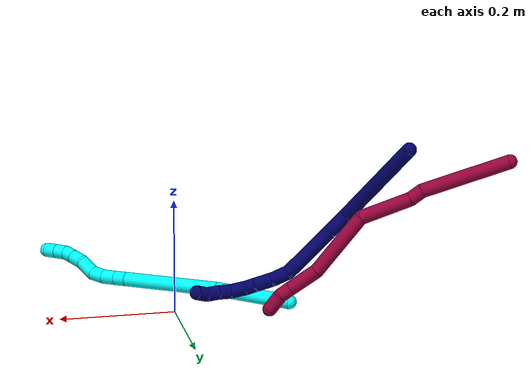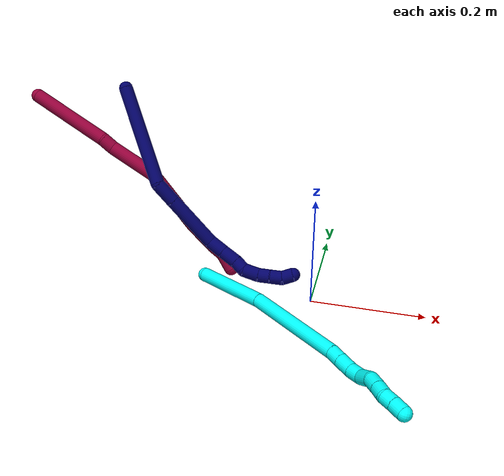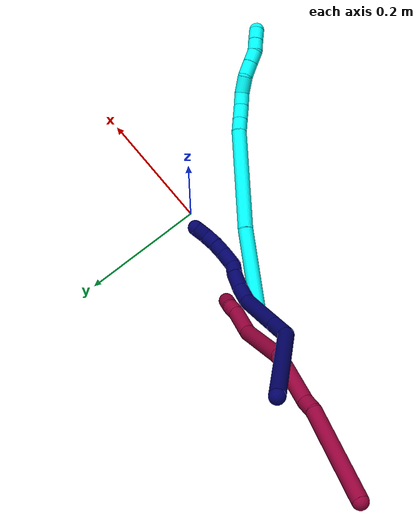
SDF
<sdf version="1.7">
 <world name="default">
  <model name="3">
   <static>0</static>
   <link name="3">
    <collision name="collision-cylinder-e_1_1_4">
     <pose>0.041399 -0.029282 0.043448 0.593027 0.668701 0.211479</pose>
     <geometry><cylinder><radius>0.0125</radius><length>0.133551</length></cylinder></geometry>
     <surface>
      <friction><ode><mu>1.16</mu><mu2>1.16</mu2><slip1>0</slip1><slip2>0</slip2></ode></friction>
      <contact><ode><kp>1e+06</kp><kd>1</kd><max_vel>0</max_vel><min_depth>0.001</min_depth></ode></contact>
     </surface>
    </collision>
    <visual name="visual-cylinder-e_1_1_4">
     <pose>0.041399 -0.029282 0.043448 0.593027 0.668701 0.211479</pose>
     <geometry><cylinder><radius>0.0125</radius><length>0.133551</length></cylinder></geometry>
     <material><ambient>0.003922 1 0.996078 1</ambient></material>
    </visual>
    <collision name="collision-cylinder-e_2_4_5">
     <pose>0.144942 -0.088887 0.141372 0.507932 0.783761 0.21372</pose>
     <geometry><cylinder><radius>0.0125</radius><length>0.176058</length></cylinder></geometry>
     <surface>
      <friction><ode><mu>1.16</mu><mu2>1.16</mu2><slip1>0</slip1><slip2>0</slip2></ode></friction>
      <contact><ode><kp>1e+06</kp><kd>1</kd><max_vel>0</max_vel><min_depth>0.001</min_depth></ode></contact>
     </surface>
    </collision>
    <visual name="visual-cylinder-e_2_4_5">
     <pose>0.144942 -0.088887 0.141372 0.507932 0.783761 0.21372</pose>
     <geometry><cylinder><radius>0.0125</radius><length>0.176058</length></cylinder></geometry>
     <material><ambient>0.003922 1 0.996078 1</ambient></material>
    </visual>
    <collision name="collision-cylinder-e_3_5_6">
     <pose>0.216009 -0.122437 0.20179 0.497442 0.922474 0.251123</pose>
     <geometry><cylinder><radius>0.0125</radius><length>0.022389</length></cylinder></geometry>
     <surface>
      <friction><ode><mu>1.16</mu><mu2>1.16</mu2><slip1>0</slip1><slip2>0</slip2></ode></friction>
      <contact><ode><kp>1e+06</kp><kd>1</kd><max_vel>0</max_vel><min_depth>0.001</min_depth></ode></contact>
     </surface>
    </collision>
    <visual name="visual-cylinder-e_3_5_6">
     <pose>0.216009 -0.122437 0.20179 0.497442 0.922474 0.251123</pose>
     <geometry><cylinder><radius>0.0125</radius><length>0.022389</length></cylinder></geometry>
     <material><ambient>0.003922 1 0.996078 1</ambient></material>
    </visual>
    <collision name="collision-cylinder-e_4_6_7">
     <pose>0.23556 -0.12954 0.21474 0.505208 0.924923 0.255946</pose>
     <geometry><cylinder><radius>0.0125</radius><length>0.026616</length></cylinder></geometry>
     <surface>
      <friction><ode><mu>1.16</mu><mu2>1.16</mu2><slip1>0</slip1><slip2>0</slip2></ode></friction>
      <contact><ode><kp>1e+06</kp><kd>1</kd><max_vel>0</max_vel><min_depth>0.001</min_depth></ode></contact>
     </surface>
    </collision>
    <visual name="visual-cylinder-e_4_6_7">
     <pose>0.23556 -0.12954 0.21474 0.505208 0.924923 0.255946</pose>
     <geometry><cylinder><radius>0.0125</radius><length>0.026616</length></cylinder></geometry>
     <material><ambient>0.003922 1 0.996078 1</ambient></material>
    </visual>
    <collision name="collision-cylinder-e_5_7_8">
     <pose>0.254836 -0.138997 0.227447 0.774963 0.825925 0.353897</pose>
     <geometry><cylinder><radius>0.0125</radius><length>0.02353</length></cylinder></geometry>
     <surface>
      <friction><ode><mu>1.16</mu><mu2>1.16</mu2><slip1>0</slip1><slip2>0</slip2></ode></friction>
      <contact><ode><kp>1e+06</kp><kd>1</kd><max_vel>0</max_vel><min_depth>0.001</min_depth></ode></contact>
     </surface>
    </collision>
    <visual name="visual-cylinder-e_5_7_8">
     <pose>0.254836 -0.138997 0.227447 0.774963 0.825925 0.353897</pose>
     <geometry><cylinder><radius>0.0125</radius><length>0.02353</length></cylinder></geometry>
     <material><ambient>0.003922 1 0.996078 1</ambient></material>
    </visual>
    <collision name="collision-cylinder-e_6_8_9">
     <pose>0.272626 -0.155858 0.235717 1.34657 0.668592 0.540519</pose>
     <geometry><cylinder><radius>0.0125</radius><length>0.029492</length></cylinder></geometry>
     <surface>
      <friction><ode><mu>1.16</mu><mu2>1.16</mu2><slip1>0</slip1><slip2>0</slip2></ode></friction>
      <contact><ode><kp>1e+06</kp><kd>1</kd><max_vel>0</max_vel><min_depth>0.001</min_depth></ode></contact>
     </surface>
    </collision>
    <visual name="visual-cylinder-e_6_8_9">
     <pose>0.272626 -0.155858 0.235717 1.34657 0.668592 0.540519</pose>
     <geometry><cylinder><radius>0.0125</radius><length>0.029492</length></cylinder></geometry>
     <material><ambient>0.003922 1 0.996078 1</ambient></material>
    </visual>
    <collision name="collision-cylinder-e_7_9_10">
     <pose>0.292516 -0.172763 0.241053 1.11413 1.04308 0.687399</pose>
     <geometry><cylinder><radius>0.0125</radius><length>0.024883</length></cylinder></geometry>
     <surface>
      <friction><ode><mu>1.16</mu><mu2>1.16</mu2><slip1>0</slip1><slip2>0</slip2></ode></friction>
      <contact><ode><kp>1e+06</kp><kd>1</kd><max_vel>0</max_vel><min_depth>0.001</min_depth></ode></contact>
     </surface>
    </collision>
    <visual name="visual-cylinder-e_7_9_10">
     <pose>0.292516 -0.172763 0.241053 1.11413 1.04308 0.687399</pose>
     <geometry><cylinder><radius>0.0125</radius><length>0.024883</length></cylinder></geometry>
     <material><ambient>0.003922 1 0.996078 1</ambient></material>
    </visual>
    <collision name="collision-cylinder-e_8_10_11">
     <pose>0.312894 -0.182943 0.246119 1.10288 1.08322 0.708844</pose>
     <geometry><cylinder><radius>0.0125</radius><length>0.021799</length></cylinder></geometry>
     <surface>
      <friction><ode><mu>1.16</mu><mu2>1.16</mu2><slip1>0</slip1><slip2>0</slip2></ode></friction>
      <contact><ode><kp>1e+06</kp><kd>1</kd><max_vel>0</max_vel><min_depth>0.001</min_depth></ode></contact>
     </surface>
    </collision>
    <visual name="visual-cylinder-e_8_10_11">
     <pose>0.312894 -0.182943 0.246119 1.10288 1.08322 0.708844</pose>
     <geometry><cylinder><radius>0.0125</radius><length>0.021799</length></cylinder></geometry>
     <material><ambient>0.003922 1 0.996078 1</ambient></material>
    </visual>
    <collision name="collision-cylinder-e_9_11_12">
     <pose>0.330412 -0.191022 0.253747 0.584268 0.890402 0.285048</pose>
     <geometry><cylinder><radius>0.0125</radius><length>0.020296</length></cylinder></geometry>
     <surface>
      <friction><ode><mu>1.16</mu><mu2>1.16</mu2><slip1>0</slip1><slip2>0</slip2></ode></friction>
      <contact><ode><kp>1e+06</kp><kd>1</kd><max_vel>0</max_vel><min_depth>0.001</min_depth></ode></contact>
     </surface>
    </collision>
    <visual name="visual-cylinder-e_9_11_12">
     <pose>0.330412 -0.191022 0.253747 0.584268 0.890402 0.285048</pose>
     <geometry><cylinder><radius>0.0125</radius><length>0.020296</length></cylinder></geometry>
     <material><ambient>0.003922 1 0.996078 1</ambient></material>
    </visual>
    <collision name="collision-cylinder-e_10_12_2">
     <pose>0.346869 -0.197824 0.264563 0.538568 0.929516 0.275008</pose>
     <geometry><cylinder><radius>0.0125</radius><length>0.021385</length></cylinder></geometry>
     <surface>
      <friction><ode><mu>1.16</mu><mu2>1.16</mu2><slip1>0</slip1><slip2>0</slip2></ode></friction>
      <contact><ode><kp>1e+06</kp><kd>1</kd><max_vel>0</max_vel><min_depth>0.001</min_depth></ode></contact>
     </surface>
    </collision>
    <visual name="visual-cylinder-e_10_12_2">
     <pose>0.346869 -0.197824 0.264563 0.538568 0.929516 0.275008</pose>
     <geometry><cylinder><radius>0.0125</radius><length>0.021385</length></cylinder></geometry>
     <material><ambient>0.003922 1 0.996078 1</ambient></material>
    </visual>
    <collision name="collision-sphere-2">
     <pose>0.355437 -0.201105 0.270054 0 -0 0</pose>
     <geometry><sphere><radius>0.0125</radius></sphere></geometry>
     <surface>
      <friction><ode><mu>1.16</mu><mu2>1.16</mu2><slip1>0</slip1><slip2>0</slip2></ode></friction>
      <contact><ode><kp>1e+06</kp><kd>1</kd><max_vel>0</max_vel><min_depth>0.001</min_depth></ode></contact>
     </surface>
    </collision>
    <visual name="visual-sphere-2">
     <pose>0.355437 -0.201105 0.270054 0 -0 0</pose>
     <geometry><sphere><radius>0.0125</radius></sphere></geometry>
     <material><ambient>0.003922 1 0.996078 1</ambient></material>
    </visual>
    <collision name="collision-sphere-12">
     <pose>0.3383 -0.194543 0.259072 0 -0 0</pose>
     <geometry><sphere><radius>0.0125</radius></sphere></geometry>
     <surface>
      <friction><ode><mu>1.16</mu><mu2>1.16</mu2><slip1>0</slip1><slip2>0</slip2></ode></friction>
      <contact><ode><kp>1e+06</kp><kd>1</kd><max_vel>0</max_vel><min_depth>0.001</min_depth></ode></contact>
     </surface>
    </collision>
    <visual name="visual-sphere-12">
     <pose>0.3383 -0.194543 0.259072 0 -0 0</pose>
     <geometry><sphere><radius>0.0125</radius></sphere></geometry>
     <material><ambient>0.003922 1 0.996078 1</ambient></material>
    </visual>
    <collision name="collision-sphere-11">
     <pose>0.322523 -0.187501 0.248422 0 -0 0</pose>
     <geometry><sphere><radius>0.0125</radius></sphere></geometry>
     <surface>
      <friction><ode><mu>1.16</mu><mu2>1.16</mu2><slip1>0</slip1><slip2>0</slip2></ode></friction>
      <contact><ode><kp>1e+06</kp><kd>1</kd><max_vel>0</max_vel><min_depth>0.001</min_depth></ode></contact>
     </surface>
    </collision>
    <visual name="visual-sphere-11">
     <pose>0.322523 -0.187501 0.248422 0 -0 0</pose>
     <geometry><sphere><radius>0.0125</radius></sphere></geometry>
     <material><ambient>0.003922 1 0.996078 1</ambient></material>
    </visual>
    <collision name="collision-sphere-10">
     <pose>0.303265 -0.178386 0.243816 0 -0 0</pose>
     <geometry><sphere><radius>0.0125</radius></sphere></geometry>
     <surface>
      <friction><ode><mu>1.16</mu><mu2>1.16</mu2><slip1>0</slip1><slip2>0</slip2></ode></friction>
      <contact><ode><kp>1e+06</kp><kd>1</kd><max_vel>0</max_vel><min_depth>0.001</min_depth></ode></contact>
     </surface>
    </collision>
    <visual name="visual-sphere-10">
     <pose>0.303265 -0.178386 0.243816 0 -0 0</pose>
     <geometry><sphere><radius>0.0125</radius></sphere></geometry>
     <material><ambient>0.003922 1 0.996078 1</ambient></material>
    </visual>
    <collision name="collision-sphere-9">
     <pose>0.281767 -0.16714 0.23829 0 -0 0</pose>
     <geometry><sphere><radius>0.0125</radius></sphere></geometry>
     <surface>
      <friction><ode><mu>1.16</mu><mu2>1.16</mu2><slip1>0</slip1><slip2>0</slip2></ode></friction>
      <contact><ode><kp>1e+06</kp><kd>1</kd><max_vel>0</max_vel><min_depth>0.001</min_depth></ode></contact>
     </surface>
    </collision>
    <visual name="visual-sphere-9">
     <pose>0.281767 -0.16714 0.23829 0 -0 0</pose>
     <geometry><sphere><radius>0.0125</radius></sphere></geometry>
     <material><ambient>0.003922 1 0.996078 1</ambient></material>
    </visual>
    <collision name="collision-sphere-4">
     <pose>0.082798 -0.058563 0.086896 0 -0 0</pose>
     <geometry><sphere><radius>0.0125</radius></sphere></geometry>
     <surface>
      <friction><ode><mu>1.16</mu><mu2>1.16</mu2><slip1>0</slip1><slip2>0</slip2></ode></friction>
      <contact><ode><kp>1e+06</kp><kd>1</kd><max_vel>0</max_vel><min_depth>0.001</min_depth></ode></contact>
     </surface>
    </collision>
    <visual name="visual-sphere-4">
     <pose>0.082798 -0.058563 0.086896 0 -0 0</pose>
     <geometry><sphere><radius>0.0125</radius></sphere></geometry>
     <material><ambient>0.003922 1 0.996078 1</ambient></material>
    </visual>
    <collision name="collision-sphere-1">
     <geometry><sphere><radius>0.0125</radius></sphere></geometry>
     <surface>
      <friction><ode><mu>1.16</mu><mu2>1.16</mu2><slip1>0</slip1><slip2>0</slip2></ode></friction>
      <contact><ode><kp>1e+06</kp><kd>1</kd><max_vel>0</max_vel><min_depth>0.001</min_depth></ode></contact>
     </surface>
    </collision>
    <visual name="visual-sphere-1">
     <geometry><sphere><radius>0.0125</radius></sphere></geometry>
     <material><ambient>0.003922 1 0.996078 1</ambient></material>
    </visual>
    <collision name="collision-sphere-8">
     <pose>0.263485 -0.144577 0.233145 0 -0 0</pose>
     <geometry><sphere><radius>0.0125</radius></sphere></geometry>
     <surface>
      <friction><ode><mu>1.16</mu><mu2>1.16</mu2><slip1>0</slip1><slip2>0</slip2></ode></friction>
      <contact><ode><kp>1e+06</kp><kd>1</kd><max_vel>0</max_vel><min_depth>0.001</min_depth></ode></contact>
     </surface>
    </collision>
    <visual name="visual-sphere-8">
     <pose>0.263485 -0.144577 0.233145 0 -0 0</pose>
     <geometry><sphere><radius>0.0125</radius></sphere></geometry>
     <material><ambient>0.003922 1 0.996078 1</ambient></material>
    </visual>
    <collision name="collision-sphere-5">
     <pose>0.207086 -0.119212 0.195849 0 -0 0</pose>
     <geometry><sphere><radius>0.0125</radius></sphere></geometry>
     <surface>
      <friction><ode><mu>1.16</mu><mu2>1.16</mu2><slip1>0</slip1><slip2>0</slip2></ode></friction>
      <contact><ode><kp>1e+06</kp><kd>1</kd><max_vel>0</max_vel><min_depth>0.001</min_depth></ode></contact>
     </surface>
    </collision>
    <visual name="visual-sphere-5">
     <pose>0.207086 -0.119212 0.195849 0 -0 0</pose>
     <geometry><sphere><radius>0.0125</radius></sphere></geometry>
     <material><ambient>0.003922 1 0.996078 1</ambient></material>
    </visual>
    <collision name="collision-sphere-6">
     <pose>0.224932 -0.125663 0.20773 0 -0 0</pose>
     <geometry><sphere><radius>0.0125</radius></sphere></geometry>
     <surface>
      <friction><ode><mu>1.16</mu><mu2>1.16</mu2><slip1>0</slip1><slip2>0</slip2></ode></friction>
      <contact><ode><kp>1e+06</kp><kd>1</kd><max_vel>0</max_vel><min_depth>0.001</min_depth></ode></contact>
     </surface>
    </collision>
    <visual name="visual-sphere-6">
     <pose>0.224932 -0.125663 0.20773 0 -0 0</pose>
     <geometry><sphere><radius>0.0125</radius></sphere></geometry>
     <material><ambient>0.003922 1 0.996078 1</ambient></material>
    </visual>
    <collision name="collision-sphere-7">
     <pose>0.246187 -0.133417 0.221749 0 -0 0</pose>
     <geometry><sphere><radius>0.0125</radius></sphere></geometry>
     <surface>
      <friction><ode><mu>1.16</mu><mu2>1.16</mu2><slip1>0</slip1><slip2>0</slip2></ode></friction>
      <contact><ode><kp>1e+06</kp><kd>1</kd><max_vel>0</max_vel><min_depth>0.001</min_depth></ode></contact>
     </surface>
    </collision>
    <visual name="visual-sphere-7">
     <pose>0.246187 -0.133417 0.221749 0 -0 0</pose>
     <geometry><sphere><radius>0.0125</radius></sphere></geometry>
     <material><ambient>0.003922 1 0.996078 1</ambient></material>
    </visual>
    <inertial>
     <pose>0.168826 -0.100021 0.150801 0 -0 0</pose>
     <mass>0.5</mass>
     <inertia>
      <ixx>0.00062</ixx>
      <ixy>0</ixy>
      <ixz>0</ixz>
      <iyy>0.000713</iyy>
      <iyz>0</iyz>
      <izz>-0.000188</izz>
     </inertia>
    </inertial>
   </link>
   <pose>-0.197695 0.020131 0.011497 -1.88433 0.2334 -1.39298</pose>
  </model>
  <model name="7">
   <static>0</static>
   <link name="7">
    <collision name="collision-cylinder-e_1_1_4">
     <pose>-0.038786 0.082893 -0.019375 -1.80041 -0.427521 0.534253</pose>
     <geometry><cylinder><radius>0.0125</radius><length>0.187093</length></cylinder></geometry>
     <surface>
      <friction><ode><mu>1.16</mu><mu2>1.16</mu2><slip1>0</slip1><slip2>0</slip2></ode></friction>
      <contact><ode><kp>1e+06</kp><kd>1</kd><max_vel>0</max_vel><min_depth>0.001</min_depth></ode></contact>
     </surface>
    </collision>
    <visual name="visual-cylinder-e_1_1_4">
     <pose>-0.038786 0.082893 -0.019375 -1.80041 -0.427521 0.534253</pose>
     <geometry><cylinder><radius>0.0125</radius><length>0.187093</length></cylinder></geometry>
     <material><ambient>0.003922 0 0.403922 1</ambient></material>
    </visual>
    <collision name="collision-cylinder-e_2_4_5">
     <pose>-0.078878 0.185894 -0.03596 -1.43289 -0.064263 0.055965</pose>
     <geometry><cylinder><radius>0.0125</radius><length>0.040686</length></cylinder></geometry>
     <surface>
      <friction><ode><mu>1.16</mu><mu2>1.16</mu2><slip1>0</slip1><slip2>0</slip2></ode></friction>
      <contact><ode><kp>1e+06</kp><kd>1</kd><max_vel>0</max_vel><min_depth>0.001</min_depth></ode></contact>
     </surface>
    </collision>
    <visual name="visual-cylinder-e_2_4_5">
     <pose>-0.078878 0.185894 -0.03596 -1.43289 -0.064263 0.055965</pose>
     <geometry><cylinder><radius>0.0125</radius><length>0.040686</length></cylinder></geometry>
     <material><ambient>0.003922 0 0.403922 1</ambient></material>
    </visual>
    <collision name="collision-cylinder-e_3_5_6">
     <pose>-0.083247 0.255363 -0.026394 -1.43439 -0.061377 0.053532</pose>
     <geometry><cylinder><radius>0.0125</radius><length>0.099834</length></cylinder></geometry>
     <surface>
      <friction><ode><mu>1.16</mu><mu2>1.16</mu2><slip1>0</slip1><slip2>0</slip2></ode></friction>
      <contact><ode><kp>1e+06</kp><kd>1</kd><max_vel>0</max_vel><min_depth>0.001</min_depth></ode></contact>
     </surface>
    </collision>
    <visual name="visual-cylinder-e_3_5_6">
     <pose>-0.083247 0.255363 -0.026394 -1.43439 -0.061377 0.053532</pose>
     <geometry><cylinder><radius>0.0125</radius><length>0.099834</length></cylinder></geometry>
     <material><ambient>0.003922 0 0.403922 1</ambient></material>
    </visual>
    <collision name="collision-cylinder-e_4_6_7">
     <pose>-0.084243 0.319681 -0.022007 -1.72917 0.135503 -0.15877</pose>
     <geometry><cylinder><radius>0.0125</radius><length>0.030575</length></cylinder></geometry>
     <surface>
      <friction><ode><mu>1.16</mu><mu2>1.16</mu2><slip1>0</slip1><slip2>0</slip2></ode></friction>
      <contact><ode><kp>1e+06</kp><kd>1</kd><max_vel>0</max_vel><min_depth>0.001</min_depth></ode></contact>
     </surface>
    </collision>
    <visual name="visual-cylinder-e_4_6_7">
     <pose>-0.084243 0.319681 -0.022007 -1.72917 0.135503 -0.15877</pose>
     <geometry><cylinder><radius>0.0125</radius><length>0.030575</length></cylinder></geometry>
     <material><ambient>0.003922 0 0.403922 1</ambient></material>
    </visual>
    <collision name="collision-cylinder-e_5_7_8">
     <pose>-0.079631 0.349173 -0.028716 -1.8597 0.166431 -0.222686</pose>
     <geometry><cylinder><radius>0.0125</radius><length>0.030752</length></cylinder></geometry>
     <surface>
      <friction><ode><mu>1.16</mu><mu2>1.16</mu2><slip1>0</slip1><slip2>0</slip2></ode></friction>
      <contact><ode><kp>1e+06</kp><kd>1</kd><max_vel>0</max_vel><min_depth>0.001</min_depth></ode></contact>
     </surface>
    </collision>
    <visual name="visual-cylinder-e_5_7_8">
     <pose>-0.079631 0.349173 -0.028716 -1.8597 0.166431 -0.222686</pose>
     <geometry><cylinder><radius>0.0125</radius><length>0.030752</length></cylinder></geometry>
     <material><ambient>0.003922 0 0.403922 1</ambient></material>
    </visual>
    <collision name="collision-cylinder-e_6_8_9">
     <pose>-0.077031 0.373055 -0.036867 -1.95972 0.005181 -0.007723</pose>
     <geometry><cylinder><radius>0.0125</radius><length>0.020203</length></cylinder></geometry>
     <surface>
      <friction><ode><mu>1.16</mu><mu2>1.16</mu2><slip1>0</slip1><slip2>0</slip2></ode></friction>
      <contact><ode><kp>1e+06</kp><kd>1</kd><max_vel>0</max_vel><min_depth>0.001</min_depth></ode></contact>
     </surface>
    </collision>
    <visual name="visual-cylinder-e_6_8_9">
     <pose>-0.077031 0.373055 -0.036867 -1.95972 0.005181 -0.007723</pose>
     <geometry><cylinder><radius>0.0125</radius><length>0.020203</length></cylinder></geometry>
     <material><ambient>0.003922 0 0.403922 1</ambient></material>
    </visual>
    <collision name="collision-cylinder-e_7_9_10">
     <pose>-0.07066 0.394849 -0.04254 -1.71779 0.465416 -0.536131</pose>
     <geometry><cylinder><radius>0.0125</radius><length>0.028161</length></cylinder></geometry>
     <surface>
      <friction><ode><mu>1.16</mu><mu2>1.16</mu2><slip1>0</slip1><slip2>0</slip2></ode></friction>
      <contact><ode><kp>1e+06</kp><kd>1</kd><max_vel>0</max_vel><min_depth>0.001</min_depth></ode></contact>
     </surface>
    </collision>
    <visual name="visual-cylinder-e_7_9_10">
     <pose>-0.07066 0.394849 -0.04254 -1.71779 0.465416 -0.536131</pose>
     <geometry><cylinder><radius>0.0125</radius><length>0.028161</length></cylinder></geometry>
     <material><ambient>0.003922 0 0.403922 1</ambient></material>
    </visual>
    <collision name="collision-cylinder-e_8_10_11">
     <pose>-0.058007 0.41505 -0.045664 -1.73457 0.678311 -0.788229</pose>
     <geometry><cylinder><radius>0.0125</radius><length>0.020186</length></cylinder></geometry>
     <surface>
      <friction><ode><mu>1.16</mu><mu2>1.16</mu2><slip1>0</slip1><slip2>0</slip2></ode></friction>
      <contact><ode><kp>1e+06</kp><kd>1</kd><max_vel>0</max_vel><min_depth>0.001</min_depth></ode></contact>
     </surface>
    </collision>
    <visual name="visual-cylinder-e_8_10_11">
     <pose>-0.058007 0.41505 -0.045664 -1.73457 0.678311 -0.788229</pose>
     <geometry><cylinder><radius>0.0125</radius><length>0.020186</length></cylinder></geometry>
     <material><ambient>0.003922 0 0.403922 1</ambient></material>
    </visual>
    <collision name="collision-cylinder-e_9_11_12">
     <pose>-0.044898 0.431405 -0.047123 -1.59143 0.667164 -0.680033</pose>
     <geometry><cylinder><radius>0.0125</radius><length>0.021901</length></cylinder></geometry>
     <surface>
      <friction><ode><mu>1.16</mu><mu2>1.16</mu2><slip1>0</slip1><slip2>0</slip2></ode></friction>
      <contact><ode><kp>1e+06</kp><kd>1</kd><max_vel>0</max_vel><min_depth>0.001</min_depth></ode></contact>
     </surface>
    </collision>
    <visual name="visual-cylinder-e_9_11_12">
     <pose>-0.044898 0.431405 -0.047123 -1.59143 0.667164 -0.680033</pose>
     <geometry><cylinder><radius>0.0125</radius><length>0.021901</length></cylinder></geometry>
     <material><ambient>0.003922 0 0.403922 1</ambient></material>
    </visual>
    <collision name="collision-cylinder-e_10_12_2">
     <pose>-0.029008 0.444808 -0.047496 -1.61147 1.08551 -1.12183</pose>
     <geometry><cylinder><radius>0.0125</radius><length>0.020608</length></cylinder></geometry>
     <surface>
      <friction><ode><mu>1.16</mu><mu2>1.16</mu2><slip1>0</slip1><slip2>0</slip2></ode></friction>
      <contact><ode><kp>1e+06</kp><kd>1</kd><max_vel>0</max_vel><min_depth>0.001</min_depth></ode></contact>
     </surface>
    </collision>
    <visual name="visual-cylinder-e_10_12_2">
     <pose>-0.029008 0.444808 -0.047496 -1.61147 1.08551 -1.12183</pose>
     <geometry><cylinder><radius>0.0125</radius><length>0.020608</length></cylinder></geometry>
     <material><ambient>0.003922 0 0.403922 1</ambient></material>
    </visual>
    <collision name="collision-sphere-2">
     <pose>-0.019894 0.449611 -0.047691 0 -0 0</pose>
     <geometry><sphere><radius>0.0125</radius></sphere></geometry>
     <surface>
      <friction><ode><mu>1.16</mu><mu2>1.16</mu2><slip1>0</slip1><slip2>0</slip2></ode></friction>
      <contact><ode><kp>1e+06</kp><kd>1</kd><max_vel>0</max_vel><min_depth>0.001</min_depth></ode></contact>
     </surface>
    </collision>
    <visual name="visual-sphere-2">
     <pose>-0.019894 0.449611 -0.047691 0 -0 0</pose>
     <geometry><sphere><radius>0.0125</radius></sphere></geometry>
     <material><ambient>0.003922 0 0.403922 1</ambient></material>
    </visual>
    <collision name="collision-sphere-12">
     <pose>-0.038122 0.440006 -0.0473 0 -0 0</pose>
     <geometry><sphere><radius>0.0125</radius></sphere></geometry>
     <surface>
      <friction><ode><mu>1.16</mu><mu2>1.16</mu2><slip1>0</slip1><slip2>0</slip2></ode></friction>
      <contact><ode><kp>1e+06</kp><kd>1</kd><max_vel>0</max_vel><min_depth>0.001</min_depth></ode></contact>
     </surface>
    </collision>
    <visual name="visual-sphere-12">
     <pose>-0.038122 0.440006 -0.0473 0 -0 0</pose>
     <geometry><sphere><radius>0.0125</radius></sphere></geometry>
     <material><ambient>0.003922 0 0.403922 1</ambient></material>
    </visual>
    <collision name="collision-sphere-11">
     <pose>-0.051674 0.422804 -0.046946 0 -0 0</pose>
     <geometry><sphere><radius>0.0125</radius></sphere></geometry>
     <surface>
      <friction><ode><mu>1.16</mu><mu2>1.16</mu2><slip1>0</slip1><slip2>0</slip2></ode></friction>
      <contact><ode><kp>1e+06</kp><kd>1</kd><max_vel>0</max_vel><min_depth>0.001</min_depth></ode></contact>
     </surface>
    </collision>
    <visual name="visual-sphere-11">
     <pose>-0.051674 0.422804 -0.046946 0 -0 0</pose>
     <geometry><sphere><radius>0.0125</radius></sphere></geometry>
     <material><ambient>0.003922 0 0.403922 1</ambient></material>
    </visual>
    <collision name="collision-sphere-10">
     <pose>-0.06434 0.407297 -0.044383 0 -0 0</pose>
     <geometry><sphere><radius>0.0125</radius></sphere></geometry>
     <surface>
      <friction><ode><mu>1.16</mu><mu2>1.16</mu2><slip1>0</slip1><slip2>0</slip2></ode></friction>
      <contact><ode><kp>1e+06</kp><kd>1</kd><max_vel>0</max_vel><min_depth>0.001</min_depth></ode></contact>
     </surface>
    </collision>
    <visual name="visual-sphere-10">
     <pose>-0.06434 0.407297 -0.044383 0 -0 0</pose>
     <geometry><sphere><radius>0.0125</radius></sphere></geometry>
     <material><ambient>0.003922 0 0.403922 1</ambient></material>
    </visual>
    <collision name="collision-sphere-9">
     <pose>-0.076979 0.382402 -0.040697 0 -0 0</pose>
     <geometry><sphere><radius>0.0125</radius></sphere></geometry>
     <surface>
      <friction><ode><mu>1.16</mu><mu2>1.16</mu2><slip1>0</slip1><slip2>0</slip2></ode></friction>
      <contact><ode><kp>1e+06</kp><kd>1</kd><max_vel>0</max_vel><min_depth>0.001</min_depth></ode></contact>
     </surface>
    </collision>
    <visual name="visual-sphere-9">
     <pose>-0.076979 0.382402 -0.040697 0 -0 0</pose>
     <geometry><sphere><radius>0.0125</radius></sphere></geometry>
     <material><ambient>0.003922 0 0.403922 1</ambient></material>
    </visual>
    <collision name="collision-sphere-4">
     <pose>-0.077572 0.165786 -0.03875 0 -0 0</pose>
     <geometry><sphere><radius>0.0125</radius></sphere></geometry>
     <surface>
      <friction><ode><mu>1.16</mu><mu2>1.16</mu2><slip1>0</slip1><slip2>0</slip2></ode></friction>
      <contact><ode><kp>1e+06</kp><kd>1</kd><max_vel>0</max_vel><min_depth>0.001</min_depth></ode></contact>
     </surface>
    </collision>
    <visual name="visual-sphere-4">
     <pose>-0.077572 0.165786 -0.03875 0 -0 0</pose>
     <geometry><sphere><radius>0.0125</radius></sphere></geometry>
     <material><ambient>0.003922 0 0.403922 1</ambient></material>
    </visual>
    <collision name="collision-sphere-1">
     <geometry><sphere><radius>0.0125</radius></sphere></geometry>
     <surface>
      <friction><ode><mu>1.16</mu><mu2>1.16</mu2><slip1>0</slip1><slip2>0</slip2></ode></friction>
      <contact><ode><kp>1e+06</kp><kd>1</kd><max_vel>0</max_vel><min_depth>0.001</min_depth></ode></contact>
     </surface>
    </collision>
    <visual name="visual-sphere-1">
     <geometry><sphere><radius>0.0125</radius></sphere></geometry>
     <material><ambient>0.003922 0 0.403922 1</ambient></material>
    </visual>
    <collision name="collision-sphere-8">
     <pose>-0.077084 0.363708 -0.033036 0 -0 0</pose>
     <geometry><sphere><radius>0.0125</radius></sphere></geometry>
     <surface>
      <friction><ode><mu>1.16</mu><mu2>1.16</mu2><slip1>0</slip1><slip2>0</slip2></ode></friction>
      <contact><ode><kp>1e+06</kp><kd>1</kd><max_vel>0</max_vel><min_depth>0.001</min_depth></ode></contact>
     </surface>
    </collision>
    <visual name="visual-sphere-8">
     <pose>-0.077084 0.363708 -0.033036 0 -0 0</pose>
     <geometry><sphere><radius>0.0125</radius></sphere></geometry>
     <material><ambient>0.003922 0 0.403922 1</ambient></material>
    </visual>
    <collision name="collision-sphere-5">
     <pose>-0.080185 0.206002 -0.033169 0 -0 0</pose>
     <geometry><sphere><radius>0.0125</radius></sphere></geometry>
     <surface>
      <friction><ode><mu>1.16</mu><mu2>1.16</mu2><slip1>0</slip1><slip2>0</slip2></ode></friction>
      <contact><ode><kp>1e+06</kp><kd>1</kd><max_vel>0</max_vel><min_depth>0.001</min_depth></ode></contact>
     </surface>
    </collision>
    <visual name="visual-sphere-5">
     <pose>-0.080185 0.206002 -0.033169 0 -0 0</pose>
     <geometry><sphere><radius>0.0125</radius></sphere></geometry>
     <material><ambient>0.003922 0 0.403922 1</ambient></material>
    </visual>
    <collision name="collision-sphere-6">
     <pose>-0.086308 0.304723 -0.019618 0 -0 0</pose>
     <geometry><sphere><radius>0.0125</radius></sphere></geometry>
     <surface>
      <friction><ode><mu>1.16</mu><mu2>1.16</mu2><slip1>0</slip1><slip2>0</slip2></ode></friction>
      <contact><ode><kp>1e+06</kp><kd>1</kd><max_vel>0</max_vel><min_depth>0.001</min_depth></ode></contact>
     </surface>
    </collision>
    <visual name="visual-sphere-6">
     <pose>-0.086308 0.304723 -0.019618 0 -0 0</pose>
     <geometry><sphere><radius>0.0125</radius></sphere></geometry>
     <material><ambient>0.003922 0 0.403922 1</ambient></material>
    </visual>
    <collision name="collision-sphere-7">
     <pose>-0.082178 0.334638 -0.024396 0 -0 0</pose>
     <geometry><sphere><radius>0.0125</radius></sphere></geometry>
     <surface>
      <friction><ode><mu>1.16</mu><mu2>1.16</mu2><slip1>0</slip1><slip2>0</slip2></ode></friction>
      <contact><ode><kp>1e+06</kp><kd>1</kd><max_vel>0</max_vel><min_depth>0.001</min_depth></ode></contact>
     </surface>
    </collision>
    <visual name="visual-sphere-7">
     <pose>-0.082178 0.334638 -0.024396 0 -0 0</pose>
     <geometry><sphere><radius>0.0125</radius></sphere></geometry>
     <material><ambient>0.003922 0 0.403922 1</ambient></material>
    </visual>
    <inertial>
     <pose>-0.060199 0.229455 -0.028309 0 -0 0</pose>
     <mass>0.5</mass>
     <inertia>
      <ixx>0.000794</ixx>
      <ixy>0</ixy>
      <ixz>0</ixz>
      <iyy>0.000311</iyy>
      <iyz>0</iyz>
      <izz>-0.000372</izz>
     </inertia>
    </inertial>
   </link>
   <pose>-0.37659 0.142774 0.308443 -2.17819 -0.72107 0.600737</pose>
  </model>
  <model name="8">
   <static>0</static>
   <link name="8">
    <collision name="collision-cylinder-e_1_1_4">
     <pose>0.01504 -0.042487 -0.064437 2.55867 0.192455 0.62257</pose>
     <geometry><cylinder><radius>0.0125</radius><length>0.15727</length></cylinder></geometry>
     <surface>
      <friction><ode><mu>1.16</mu><mu2>1.16</mu2><slip1>0</slip1><slip2>0</slip2></ode></friction>
      <contact><ode><kp>1e+06</kp><kd>1</kd><max_vel>0</max_vel><min_depth>0.001</min_depth></ode></contact>
     </surface>
    </collision>
    <visual name="visual-cylinder-e_1_1_4">
     <pose>0.01504 -0.042487 -0.064437 2.55867 0.192455 0.62257</pose>
     <geometry><cylinder><radius>0.0125</radius><length>0.15727</length></cylinder></geometry>
     <material><ambient>0.584314 0 0.227451 1</ambient></material>
    </visual>
    <collision name="collision-cylinder-e_2_4_5">
     <pose>0.02877 -0.090886 -0.139341 2.62747 -0.108576 -0.407694</pose>
     <geometry><cylinder><radius>0.0125</radius><length>0.024185</length></cylinder></geometry>
     <surface>
      <friction><ode><mu>1.16</mu><mu2>1.16</mu2><slip1>0</slip1><slip2>0</slip2></ode></friction>
      <contact><ode><kp>1e+06</kp><kd>1</kd><max_vel>0</max_vel><min_depth>0.001</min_depth></ode></contact>
     </surface>
    </collision>
    <visual name="visual-cylinder-e_2_4_5">
     <pose>0.02877 -0.090886 -0.139341 2.62747 -0.108576 -0.407694</pose>
     <geometry><cylinder><radius>0.0125</radius><length>0.024185</length></cylinder></geometry>
     <material><ambient>0.584314 0 0.227451 1</ambient></material>
    </visual>
    <collision name="collision-cylinder-e_3_5_6">
     <pose>0.034458 -0.120256 -0.188197 2.59308 0.154319 0.536355</pose>
     <geometry><cylinder><radius>0.0125</radius><length>0.09106</length></cylinder></geometry>
     <surface>
      <friction><ode><mu>1.16</mu><mu2>1.16</mu2><slip1>0</slip1><slip2>0</slip2></ode></friction>
      <contact><ode><kp>1e+06</kp><kd>1</kd><max_vel>0</max_vel><min_depth>0.001</min_depth></ode></contact>
     </surface>
    </collision>
    <visual name="visual-cylinder-e_3_5_6">
     <pose>0.034458 -0.120256 -0.188197 2.59308 0.154319 0.536355</pose>
     <geometry><cylinder><radius>0.0125</radius><length>0.09106</length></cylinder></geometry>
     <material><ambient>0.584314 0 0.227451 1</ambient></material>
    </visual>
    <collision name="collision-cylinder-e_4_6_7">
     <pose>0.020272 -0.174382 -0.273287 2.56051 -0.362423 -1.09952</pose>
     <geometry><cylinder><radius>0.0125</radius><length>0.119503</length></cylinder></geometry>
     <surface>
      <friction><ode><mu>1.16</mu><mu2>1.16</mu2><slip1>0</slip1><slip2>0</slip2></ode></friction>
      <contact><ode><kp>1e+06</kp><kd>1</kd><max_vel>0</max_vel><min_depth>0.001</min_depth></ode></contact>
     </surface>
    </collision>
    <visual name="visual-cylinder-e_4_6_7">
     <pose>0.020272 -0.174382 -0.273287 2.56051 -0.362423 -1.09952</pose>
     <geometry><cylinder><radius>0.0125</radius><length>0.119503</length></cylinder></geometry>
     <material><ambient>0.584314 0 0.227451 1</ambient></material>
    </visual>
    <collision name="collision-cylinder-e_5_7_8">
     <pose>-0.003024 -0.221653 -0.341844 2.49201 -0.076784 -0.227171</pose>
     <geometry><cylinder><radius>0.0125</radius><length>0.055057</length></cylinder></geometry>
     <surface>
      <friction><ode><mu>1.16</mu><mu2>1.16</mu2><slip1>0</slip1><slip2>0</slip2></ode></friction>
      <contact><ode><kp>1e+06</kp><kd>1</kd><max_vel>0</max_vel><min_depth>0.001</min_depth></ode></contact>
     </surface>
    </collision>
    <visual name="visual-cylinder-e_5_7_8">
     <pose>-0.003024 -0.221653 -0.341844 2.49201 -0.076784 -0.227171</pose>
     <geometry><cylinder><radius>0.0125</radius><length>0.055057</length></cylinder></geometry>
     <material><ambient>0.584314 0 0.227451 1</ambient></material>
    </visual>
    <collision name="collision-cylinder-e_6_8_9">
     <pose>-0.006192 -0.243384 -0.373074 2.64083 -0.098557 -0.381004</pose>
     <geometry><cylinder><radius>0.0125</radius><length>0.021473</length></cylinder></geometry>
     <surface>
      <friction><ode><mu>1.16</mu><mu2>1.16</mu2><slip1>0</slip1><slip2>0</slip2></ode></friction>
      <contact><ode><kp>1e+06</kp><kd>1</kd><max_vel>0</max_vel><min_depth>0.001</min_depth></ode></contact>
     </surface>
    </collision>
    <visual name="visual-cylinder-e_6_8_9">
     <pose>-0.006192 -0.243384 -0.373074 2.64083 -0.098557 -0.381004</pose>
     <geometry><cylinder><radius>0.0125</radius><length>0.021473</length></cylinder></geometry>
     <material><ambient>0.584314 0 0.227451 1</ambient></material>
    </visual>
    <collision name="collision-cylinder-e_7_9_2">
     <pose>-0.012813 -0.258789 -0.39297 2.36811 -0.36172 -0.84406</pose>
     <geometry><cylinder><radius>0.0125</radius><length>0.031451</length></cylinder></geometry>
     <surface>
      <friction><ode><mu>1.16</mu><mu2>1.16</mu2><slip1>0</slip1><slip2>0</slip2></ode></friction>
      <contact><ode><kp>1e+06</kp><kd>1</kd><max_vel>0</max_vel><min_depth>0.001</min_depth></ode></contact>
     </surface>
    </collision>
    <visual name="visual-cylinder-e_7_9_2">
     <pose>-0.012813 -0.258789 -0.39297 2.36811 -0.36172 -0.84406</pose>
     <geometry><cylinder><radius>0.0125</radius><length>0.031451</length></cylinder></geometry>
     <material><ambient>0.584314 0 0.227451 1</ambient></material>
    </visual>
    <collision name="collision-sphere-2">
     <pose>-0.018378 -0.269064 -0.403494 0 -0 0</pose>
     <geometry><sphere><radius>0.0125</radius></sphere></geometry>
     <surface>
      <friction><ode><mu>1.16</mu><mu2>1.16</mu2><slip1>0</slip1><slip2>0</slip2></ode></friction>
      <contact><ode><kp>1e+06</kp><kd>1</kd><max_vel>0</max_vel><min_depth>0.001</min_depth></ode></contact>
     </surface>
    </collision>
    <visual name="visual-sphere-2">
     <pose>-0.018378 -0.269064 -0.403494 0 -0 0</pose>
     <geometry><sphere><radius>0.0125</radius></sphere></geometry>
     <material><ambient>0.584314 0 0.227451 1</ambient></material>
    </visual>
    <collision name="collision-sphere-9">
     <pose>-0.007248 -0.248513 -0.382447 0 -0 0</pose>
     <geometry><sphere><radius>0.0125</radius></sphere></geometry>
     <surface>
      <friction><ode><mu>1.16</mu><mu2>1.16</mu2><slip1>0</slip1><slip2>0</slip2></ode></friction>
      <contact><ode><kp>1e+06</kp><kd>1</kd><max_vel>0</max_vel><min_depth>0.001</min_depth></ode></contact>
     </surface>
    </collision>
    <visual name="visual-sphere-9">
     <pose>-0.007248 -0.248513 -0.382447 0 -0 0</pose>
     <geometry><sphere><radius>0.0125</radius></sphere></geometry>
     <material><ambient>0.584314 0 0.227451 1</ambient></material>
    </visual>
    <collision name="collision-sphere-4">
     <pose>0.030081 -0.084974 -0.128874 0 -0 0</pose>
     <geometry><sphere><radius>0.0125</radius></sphere></geometry>
     <surface>
      <friction><ode><mu>1.16</mu><mu2>1.16</mu2><slip1>0</slip1><slip2>0</slip2></ode></friction>
      <contact><ode><kp>1e+06</kp><kd>1</kd><max_vel>0</max_vel><min_depth>0.001</min_depth></ode></contact>
     </surface>
    </collision>
    <visual name="visual-sphere-4">
     <pose>0.030081 -0.084974 -0.128874 0 -0 0</pose>
     <geometry><sphere><radius>0.0125</radius></sphere></geometry>
     <material><ambient>0.584314 0 0.227451 1</ambient></material>
    </visual>
    <collision name="collision-sphere-1">
     <geometry><sphere><radius>0.0125</radius></sphere></geometry>
     <surface>
      <friction><ode><mu>1.16</mu><mu2>1.16</mu2><slip1>0</slip1><slip2>0</slip2></ode></friction>
      <contact><ode><kp>1e+06</kp><kd>1</kd><max_vel>0</max_vel><min_depth>0.001</min_depth></ode></contact>
     </surface>
    </collision>
    <visual name="visual-sphere-1">
     <geometry><sphere><radius>0.0125</radius></sphere></geometry>
     <material><ambient>0.584314 0 0.227451 1</ambient></material>
    </visual>
    <collision name="collision-sphere-8">
     <pose>-0.005135 -0.238254 -0.363702 0 -0 0</pose>
     <geometry><sphere><radius>0.0125</radius></sphere></geometry>
     <surface>
      <friction><ode><mu>1.16</mu><mu2>1.16</mu2><slip1>0</slip1><slip2>0</slip2></ode></friction>
      <contact><ode><kp>1e+06</kp><kd>1</kd><max_vel>0</max_vel><min_depth>0.001</min_depth></ode></contact>
     </surface>
    </collision>
    <visual name="visual-sphere-8">
     <pose>-0.005135 -0.238254 -0.363702 0 -0 0</pose>
     <geometry><sphere><radius>0.0125</radius></sphere></geometry>
     <material><ambient>0.584314 0 0.227451 1</ambient></material>
    </visual>
    <collision name="collision-sphere-5">
     <pose>0.02746 -0.096797 -0.149808 0 -0 0</pose>
     <geometry><sphere><radius>0.0125</radius></sphere></geometry>
     <surface>
      <friction><ode><mu>1.16</mu><mu2>1.16</mu2><slip1>0</slip1><slip2>0</slip2></ode></friction>
      <contact><ode><kp>1e+06</kp><kd>1</kd><max_vel>0</max_vel><min_depth>0.001</min_depth></ode></contact>
     </surface>
    </collision>
    <visual name="visual-sphere-5">
     <pose>0.02746 -0.096797 -0.149808 0 -0 0</pose>
     <geometry><sphere><radius>0.0125</radius></sphere></geometry>
     <material><ambient>0.584314 0 0.227451 1</ambient></material>
    </visual>
    <collision name="collision-sphere-6">
     <pose>0.041457 -0.143714 -0.226587 0 -0 0</pose>
     <geometry><sphere><radius>0.0125</radius></sphere></geometry>
     <surface>
      <friction><ode><mu>1.16</mu><mu2>1.16</mu2><slip1>0</slip1><slip2>0</slip2></ode></friction>
      <contact><ode><kp>1e+06</kp><kd>1</kd><max_vel>0</max_vel><min_depth>0.001</min_depth></ode></contact>
     </surface>
    </collision>
    <visual name="visual-sphere-6">
     <pose>0.041457 -0.143714 -0.226587 0 -0 0</pose>
     <geometry><sphere><radius>0.0125</radius></sphere></geometry>
     <material><ambient>0.584314 0 0.227451 1</ambient></material>
    </visual>
    <collision name="collision-sphere-7">
     <pose>-0.000912 -0.205051 -0.319987 0 -0 0</pose>
     <geometry><sphere><radius>0.0125</radius></sphere></geometry>
     <surface>
      <friction><ode><mu>1.16</mu><mu2>1.16</mu2><slip1>0</slip1><slip2>0</slip2></ode></friction>
      <contact><ode><kp>1e+06</kp><kd>1</kd><max_vel>0</max_vel><min_depth>0.001</min_depth></ode></contact>
     </surface>
    </collision>
    <visual name="visual-sphere-7">
     <pose>-0.000912 -0.205051 -0.319987 0 -0 0</pose>
     <geometry><sphere><radius>0.0125</radius></sphere></geometry>
     <material><ambient>0.584314 0 0.227451 1</ambient></material>
    </visual>
    <inertial>
     <pose>0.015838 -0.132478 -0.204983 0 -0 0</pose>
     <mass>0.5</mass>
     <inertia>
      <ixx>0.000495</ixx>
      <ixy>0</ixy>
      <ixz>0</ixz>
      <iyy>-0.000225</iyy>
      <iyz>0</iyz>
      <izz>0.000252</izz>
     </inertia>
    </inertial>
   </link>
   <pose>-0.552245 0.142171 0.277405 1.01306 -0.967339 -0.741043</pose>
  </model>
 </world>
</sdf>
